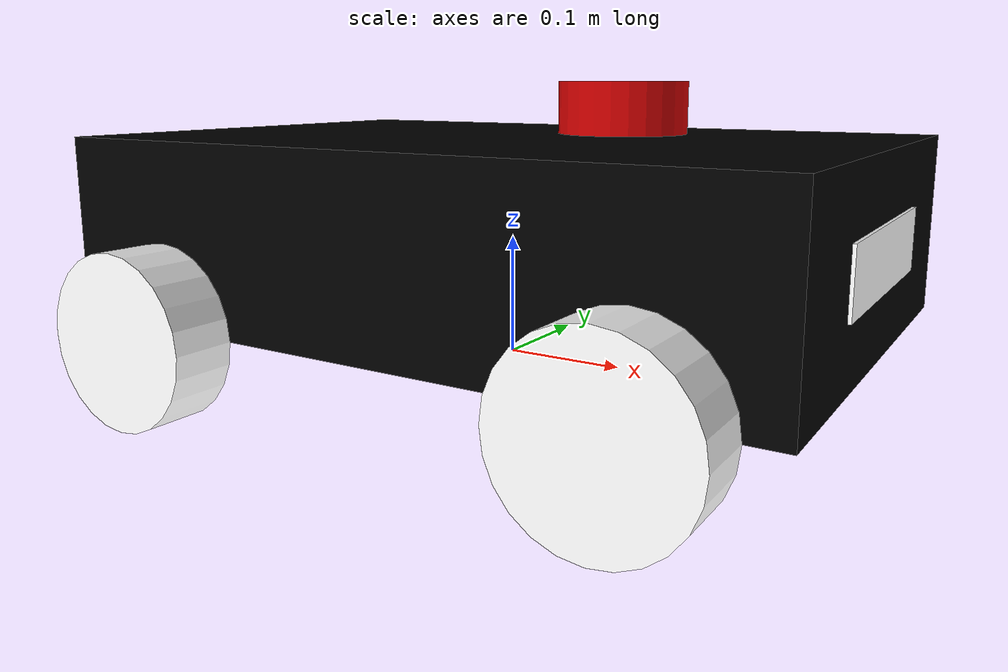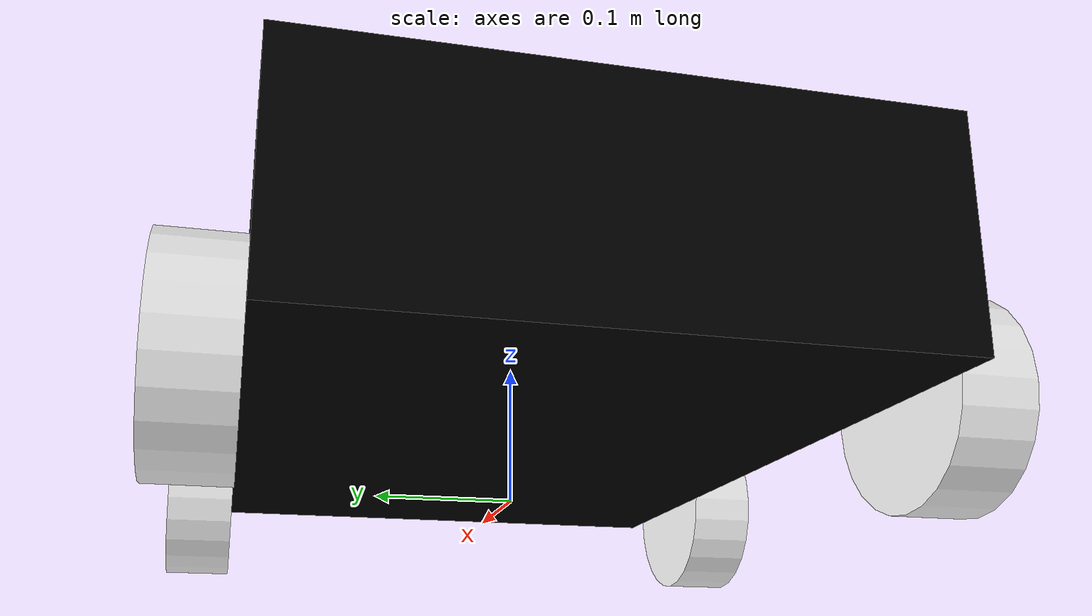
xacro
<?xml version="1.0"?>
<robot name="robo" xmlns:xacro="http://www.ros.org/wiki/xacro">
<xacro:include filename="$(find robo_description)/urdf/materials.xacro"/>
<xacro:include filename="$(find robo_description)/urdf/robo.gazebo"/>
<!-- base and base link -->
<link name="base_footprint">

</link>
<joint name="chaseToBaseFootPrint" type="fixed">
    <origin xyz="0.0 0.0 0.11" rpy="0.0 0.0 0.0"/>
    <parent link="base_footprint"/>
    <child link="chase"/>
    <axis xyz="0.0 0.0 0.0"/>
    <limit lower="0.0" upper="0.0" effort="0.0" velocity="0.0"/>
</joint>
<link name="chase">
    <inertial>
        <origin xyz="0.0 0.0 0.0" rpy="0.0 0.0 0.0"/>
        <mass value="1.0"/>
        <inertia ixx="0.0" ixy="0.0" ixz="0.0" iyy="0.0" iyz="0.0" izz="0.0"/>
    </inertial>
    <visual >
        <origin xyz="0.0 0.0 0.0" rpy="0.0 0.0 0.0"/>
        <geometry>
            <box size="0.6 0.4 0.15"/>
        </geometry>
        <material name="black">
        </material>
    </visual>
    <collision>
        <origin xyz="0.0 0.0 0.0" rpy="0.0 0.0 0.0"/>
        <geometry>
            <box size="0.6 0.4 0.2"/>
        </geometry>
    </collision>
</link>
<!--  forward left -->
<link name="f_l_wheel">
    <inertial>
        <origin xyz="0.0 0.0 0.0" rpy="0.0 0.0 0.0"/>
        <mass value="1.0"/>
        <inertia ixx="0.0" ixy="0.0" ixz="0.0" iyy="0.0" iyz="0.0" izz="0.0"/>
    </inertial>
    <visual name="">
        <origin xyz="0.0 0.0 0.0" rpy="0.0 0.0 0.0"/>
        <geometry>
            <cylinder radius="0.07" length="0.05"/>
        </geometry>
        <material name="white">
        </material>
    </visual>
    <collision>
        <origin xyz="0.0 0.0 0.0" rpy="0.0 0.0 0.0"/>
        <geometry>
            <cylinder radius="0.07" length="0.05"/>
        </geometry>
    </collision>
</link>
<joint name="f_l_wheelToBase" type="continuous">

    <origin xyz="0.20 0.225 -0.075" rpy="0.0 1.57 1.57"/>
    <parent link="chase"/>
    <child link="f_l_wheel"/>
    <axis xyz="0.0 0.0 1.0"/>
    <limit lower="0.0" upper="0.0" effort="0.0" velocity="0.0"/>
</joint>
<!--  rear left -->
<link name="r_l_wheel">
    <inertial>
        <origin xyz="0.0 0.0 0.0" rpy="0.0 0.0 0.0"/>
        <mass value="1.0"/>
        <inertia ixx="0.0" ixy="0.0" ixz="0.0" iyy="0.0" iyz="0.0" izz="0.0"/>
    </inertial>
    <visual name="">
        <origin xyz="0.0 0.0 0.0" rpy="0.0 0.0 0.0"/>
        <geometry>
            <cylinder radius="0.07" length="0.05"/>
        </geometry>
         <material name="white">
        </material>
    </visual>
    <collision>
        <origin xyz="0.0 0.0 0.0" rpy="0.0 0.0 0.0"/>
        <geometry>
            <cylinder radius="0.07" length="0.05"/>
        </geometry>
    </collision>
</link>
<joint name="r_l_wheelToBase" type="continuous">
    <origin xyz="-0.20 0.225 -0.075" rpy="0.0 1.57 1.57"/>
    <parent link="chase"/>
    <child link="r_l_wheel"/>
    <axis xyz="0.0 0.0 1.0"/>
</joint>
<!--  rear right -->
<link name="r_r_wheel">
    <inertial>
        <origin xyz="0.0 0.0 0.0" rpy="0.0 0.0 0.0"/>
        <mass value="1.0"/>
        <inertia ixx="0.0" ixy="0.0" ixz="0.0" iyy="0.0" iyz="0.0" izz="0.0"/>
    </inertial>
    <visual name="">
        <origin xyz="0.0 0.0 0.0" rpy="0.0 0.0 0.0"/>
        <geometry>
            <cylinder radius="0.07" length="0.05"/>
        </geometry>
         <material name="white">
        </material>
    </visual>
    <collision>
        <origin xyz="0.0 0.0 0.0" rpy="0.0 0.0 0.0"/>
        <geometry>
            <cylinder radius="0.07" length="0.05"/>
        </geometry>
    </collision>
</link>
<joint name="r_r_wheelToBase" type="continuous">
    <origin xyz="-0.20 -0.225 -0.075" rpy="0.0 1.57 1.57"/>
    <parent link="chase"/>
    <child link="r_r_wheel"/>
    <axis xyz="0.0 0.0 1.0"/>
</joint>
<!--  front right -->
<link name="f_r_wheel">
    <inertial>
        <origin xyz="0.0 0.0 0.0" rpy="0.0 0.0 0.0"/>
        <mass value="1.0"/>
        <inertia ixx="0.0" ixy="0.0" ixz="0.0" iyy="0.0" iyz="0.0" izz="0.0"/>
    </inertial>
    <visual name="">
        <origin xyz="0.0 0.0 0.0" rpy="0.0 0.0 0.0"/>
        <geometry>
            <cylinder radius="0.07" length="0.05"/>
        </geometry>
         <material name="white">
        </material>
    </visual>
    <collision>
        <origin xyz="0.0 0.0 0.0" rpy="0.0 0.0 0.0"/>
        <geometry>
            <cylinder radius=".07" length="0.05"/>
        </geometry>
    </collision>
</link>
<joint name="f_r_wheelToBase" type="continuous">
    <origin xyz="0.20 -0.225 -0.075" rpy="0.0 1.57 1.57"/>
    <parent link="chase"/>
    <child link="f_r_wheel"/>
    <axis xyz="0.0 0.0 1.0"/>
</joint>
    <!--  camera link -->
    <link name="camera">
        <inertial>
            <origin xyz="0.0 0.0 0.0" rpy="0.0 0.0 0.0"/>
            <mass value="1.0"/>
            <inertia ixx="0.0" ixy="0.0" ixz="0.0" iyy="0.0" iyz="0.0" izz="0.0"/>
        </inertial>
        <visual name="">
            <origin xyz="0.0 0.0 0.0" rpy="0.0 0.0 0.0"/>
            <geometry>
                <box size="0.005 0.2 0.05"/>
            </geometry>
            <material name="">
                <color rgba="1.0 1.0 1.0 1.0"/>
                <texture filename=""/>
            </material>
        </visual>
        <collision>
            <origin xyz="0.0 0.0 0.0" rpy="0.0 0.0 0.0"/>
            <geometry>
               <box size="0.005 0.2 0.075"/>
            </geometry>
        </collision>
    </link>

    <joint name="cameraTObase" type="fixed">
        <origin xyz="0.3 0.0 0.0" rpy="0.0 0.0 0.0"/>
        <parent link="chase"/>
        <child link="camera"/>
        <axis xyz="0.0 0.0 0.0"/>
        <limit lower="0.0" upper="0.0" effort="0.0" velocity="0.0"/>
    </joint>
    <!-- lidar link -->
    <joint name="laser_joint" type="fixed">
        <parent link="chase"/>
        <child link="laser_frame"/>
        <origin xyz="0.1 0 .1" rpy="0 0 0"/>
    </joint>

    <link name="laser_frame">
        <visual>
            <geometry>
                <cylinder radius="0.05" length="0.04"/>
            </geometry>
            <material name="red"/>
        </visual>
        <collision>
            <geometry>
                <cylinder radius="0.05" length="0.04"/>
            </geometry>
         </collision>
         <inertial>
            <origin xyz="0.0 0.0 0.0" rpy="0.0 0.0 0.0"/>
            <mass value="1.0"/>
            <inertia ixx="0.0" ixy="0.0" ixz="0.0" iyy="0.0" iyz="0.0" izz="0.0"/>
         </inertial>
    </link>
</robot>

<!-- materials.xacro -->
<robot >

  <material name="black">
    <color rgba="0.0 0.0 0.0 1.0"/>
  </material>

  <material name="blue">
    <color rgba="0.0 0.0 0.8 1.0"/>
  </material>

  <material name="green">
    <color rgba="0.0 0.8 0.0 1.0"/>
  </material>

  <material name="grey">
    <color rgba="0.2 0.2 0.2 1.0"/>
  </material>

  <material name="orange">
    <color rgba="${255/255} ${108/255} ${10/255} 1.0"/>
  </material>

  <material name="brown">
    <color rgba="${222/255} ${207/255} ${195/255} 1.0"/>
  </material>

  <material name="red">
    <color rgba="0.8 0.0 0.0 1.0"/>
  </material>

  <material name="white">
    <color rgba="1.0 1.0 1.0 1.0"/>
  </material>

  <material name="yellow">
    <color rgba="1.0 1.0 0 1.0"/>
  </material>

</robot>
